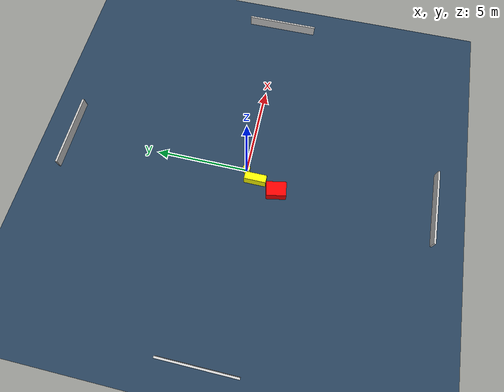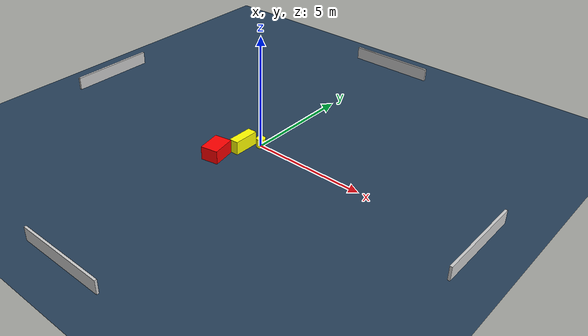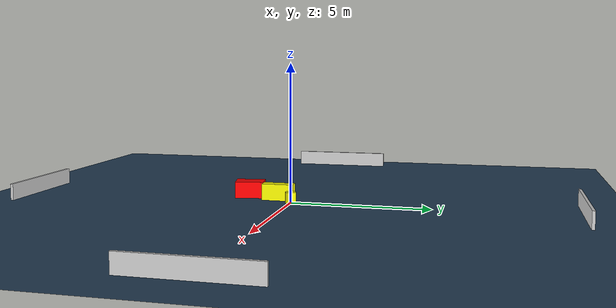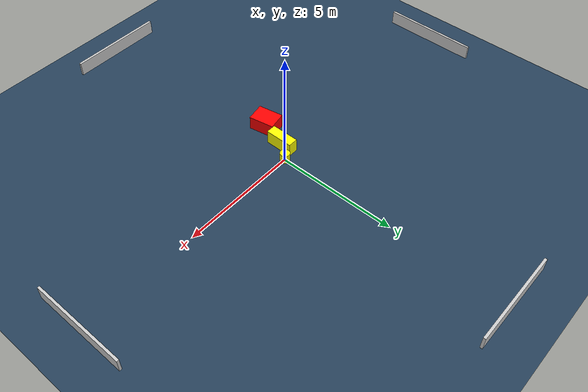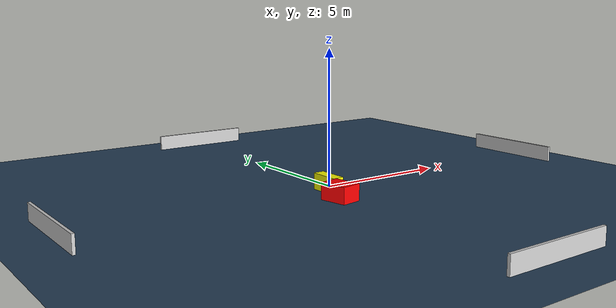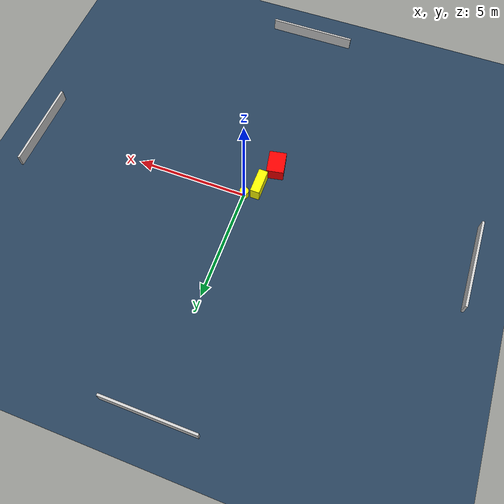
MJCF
<?xml version="1.0" ?>
<mujoco model="generated_environment">
  <option timestep="0.01" integrator="RK4" cone="elliptic"/>
  <default>
    <geom density="1"/>
  </default>
  <asset>
    <texture builtin="gradient" height="3072" name="skybox" rgb1="0.3 0.5 0.7" rgb2="0 0 0" type="skybox" width="512"/>
    <texture builtin="checker" height="300" name="groundplane" rgb1="0.2 0.3 0.4" rgb2="0.1 0.2 0.3" type="2d" width="300"/>
    <material name="groundplane" reflectance="0.2" texrepeat="5 5" texture="groundplane"/>
  </asset>
  <worldbody>
    <light dir="0 0 -1" directional="true" pos="0 0 1.5"/>
    <geom condim="3" friction="0.5 0.005 0.001" material="groundplane" name="floor" pos="0 0 0" size="0 0 0.05" type="plane"/>
    <body name="walls">
      <geom name="wall_1" condim="4" pos="-10.0 0.0 0.3" rgba="0.800000011920929 0.800000011920929 0.800000011920929 1.0" size="0.05 2.0 0.3" type="box"/>
      <geom name="wall_2" condim="4" pos="10.0 0.0 0.3" rgba="0.800000011920929 0.800000011920929 0.800000011920929 1.0" size="0.05 2.0 0.3" type="box"/>
      <geom name="wall_3" condim="4" pos="0.0 -10.0 0.3" rgba="0.800000011920929 0.800000011920929 0.800000011920929 1.0" size="2.0 0.05 0.3" type="box"/>
      <geom name="wall_4" condim="4" pos="0.0 10.0 0.3" rgba="0.800000011920929 0.800000011920929 0.800000011920929 1.0" size="2.0 0.05 0.3" type="box"/>
    </body>
    <body name="robot">
      <joint name="joint_x" type="slide" pos="0 0 0" axis="1 0 0"/>
      <joint name="joint_y" type="slide" pos="0 0 0" axis="0 1 0"/>
      <geom name="robot" type="cylinder" pos="0.0 0.0 0.2" size="0.2 0.2 0.0" mass="5.0" friction="1.0 0.005 0.0001" condim="4" rgba="1.0 1.0 0.0 1.0"/>
    </body>
    <body name="obstacle_1_movable">
      <geom name="obstacle_1_movable" condim="4" pos="-0.4815742410472134 -0.5830746527980396 0.3" euler="0 0 269.76987520523284" friction="0.0 0.005 0.001" rgba="1.0 1.0 0.0 1.0" size="0.5801317854314947 0.20749304587827572 0.3" type="box" mass="0.1"/>
      <joint type="free"/>
    </body>
    <body name="obstacle_2_static">
      <geom name="obstacle_2_static" condim="4" pos="-0.8772704877223381 -1.7776965410869454 0.3" euler="0 0 100.50150782951017" friction="0.0 0.005 0.001" rgba="1.0 0.0 0.0 1.0" size="0.527840190083716 0.38528026805681925 0.3" type="box"/>
    </body>
  </worldbody>
  <actuator>
    <motor name="actuator_x" joint="joint_x" gear="1" ctrlrange="-1 1"/>
    <motor name="actuator_y" joint="joint_y" gear="1" ctrlrange="-1 1"/>
  </actuator>
</mujoco>
